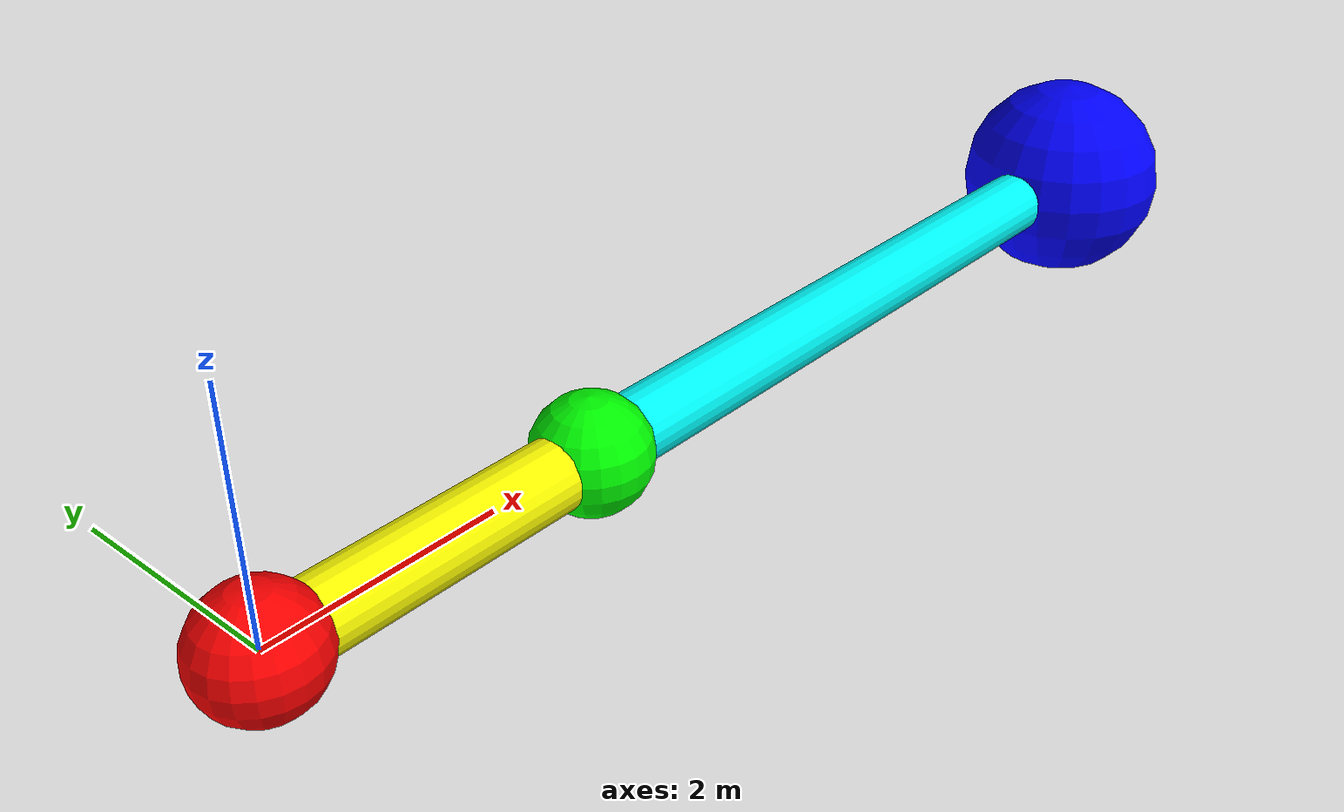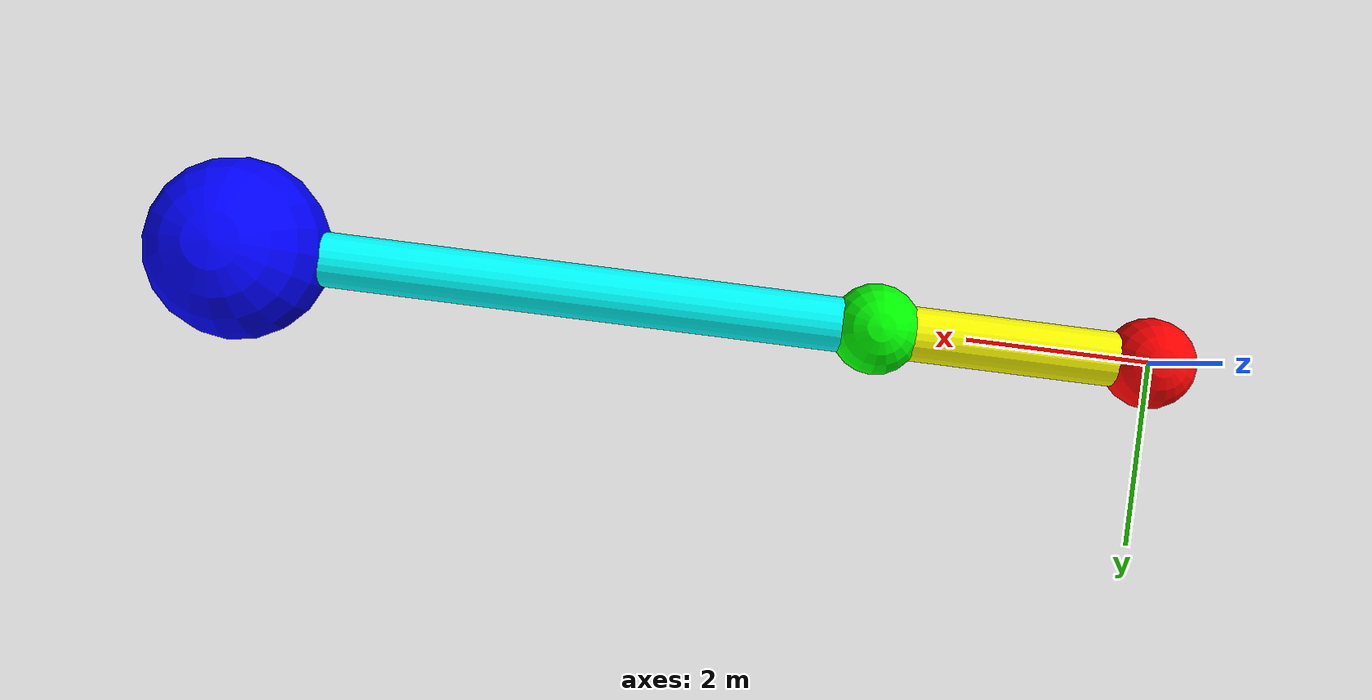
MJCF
<mujoco>
    <visual>
        <headlight ambient="0.5 0.5 0.5"/>
    </visual>
    <option gravity="0 -9.81 0"/> <!-- Gravity -->

    <worldbody>
        <light diffuse=".5 .5 .5" pos="0 0 3" dir="0 0 -1"/>
        <!-- Joint A and Arm A -->
        <body pos="0 0 0" euler="0 0 0">
            <joint name="joint_A" type="hinge" axis="0 0 1" limited="true" range="-90 90"/>
            <geom type="sphere" size="0.5" rgba="1 0 0 1"/>
            <geom name="arm_A" type="cylinder" fromto="0 0 0 3 0 0" size="0.3" rgba="1 1 0 1"/>
            <!-- Joint B to Arm B -->
            <body pos="3 0 0">
                <joint name="joint_B" type="hinge" axis="0 0 1" limited="true" range="-180 180"/>
                <geom type="sphere" size="0.5" rgba="0 1 0 1"/>
                <geom name="arm_B" type="cylinder" fromto="0 0 0 7 0 0" size="0.3" rgba="0 1 1 1"/> <!-- Example value for L -->
                    <!-- Dot with mass M -->
                    <body name="dot_body" pos="7 0 0">
                        <site name="dot" type="sphere" size="1" rgba="0 0 1 1"/>
                        <inertial pos="0 0 0" mass="1"/> <!-- arbitrary mass M -->
                    </body>
            </body>
        </body>
    </worldbody>

    <actuator>
        <motor name="torque_A" joint="joint_A" gear="1"/>
        <motor name="torque_B" joint="joint_B" gear="1"/>
    </actuator>

</mujoco>
